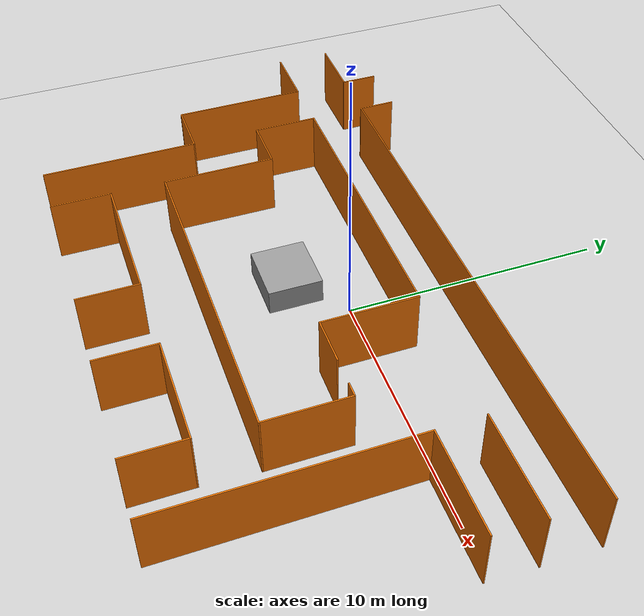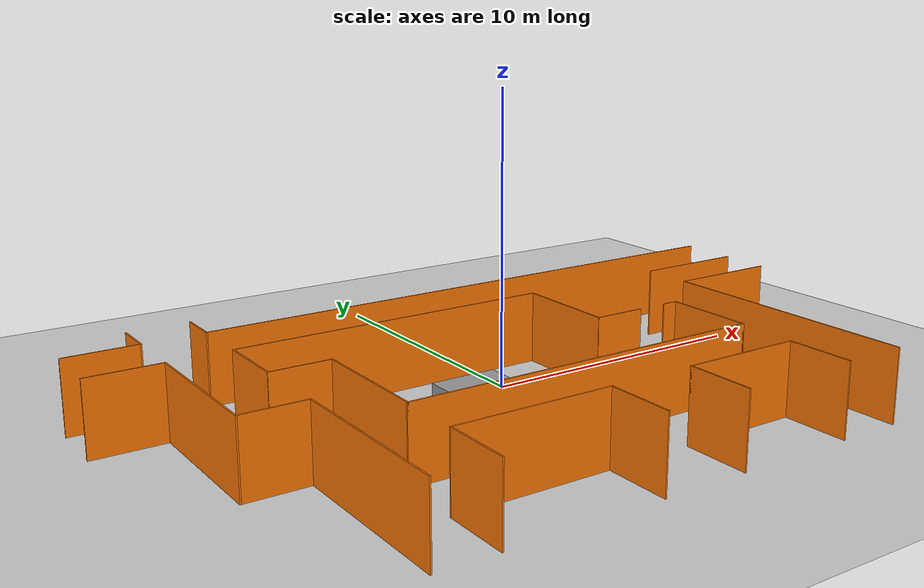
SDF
<sdf version="1.7">
 <world name="default">
  <light name="sun" type="directional">
   <pose>0 0 10 0 -0 0</pose>
   <diffuse>0.8 0.8 0.8 1</diffuse>
   <specular>0.2 0.2 0.2 1</specular>
   <attenuation>
    <range>1000</range>
    <constant>0.9</constant>
    <linear>0.01</linear>
    <quadratic>0.001</quadratic>
   </attenuation>
   <direction>-0.5 0.1 -0.9</direction>
   <spot><inner_angle>0</inner_angle><outer_angle>0</outer_angle><falloff>0</falloff></spot>
  </light>
  <model name="ground_plane">
   <static>1</static>
   <link name="link">
    <collision name="collision">
     <geometry><plane><normal>0 0 1</normal><size>100 100</size></plane></geometry>
     <surface><friction><ode><mu>100</mu><mu2>50</mu2></ode></friction></surface>
    </collision>
    <visual name="visual">
     <cast_shadows>0</cast_shadows>
     <geometry><plane><normal>0 0 1</normal><size>100 100</size></plane></geometry>
     <material>
      <script><uri>file://media/materials/scripts/gazebo.material</uri><name>Gazebo/Grey</name></script>
     </material>
    </visual>
   </link>
  </model>
  <gravity>0 0 -9.8</gravity>
  <magnetic_field>6e-06 2.3e-05 -4.2e-05</magnetic_field>
  <atmosphere type="adiabatic"/>
  <physics type="ode">
   <max_step_size>0.001</max_step_size>
   <real_time_factor>1</real_time_factor>
   <real_time_update_rate>1000</real_time_update_rate>
  </physics>
  <scene><ambient>0.4 0.4 0.4 1</ambient><background>0.7 0.7 0.7 1</background><shadows>1</shadows></scene>
  <audio><device>default</device></audio>
  <spherical_coordinates>
   <surface_model>EARTH_WGS84</surface_model>
   <latitude_deg>0</latitude_deg>
   <longitude_deg>0</longitude_deg>
   <elevation>0</elevation>
   <heading_deg>0</heading_deg>
  </spherical_coordinates>
  <model name="shiyanlou_third">
   <pose>-0.355167 -2.2278 0 0 -0 0</pose>
   <link name="Wall_110">
    <collision name="Wall_110_Collision">
     <geometry><box><size>4.083337071 0.05 2.5</size></box></geometry>
     <pose>0 0 1.25 0 -0 0</pose>
    </collision>
    <visual name="Wall_110_Visual">
     <pose>0 0 1.25 0 -0 0</pose>
     <geometry><box><size>4.083337071 0.05 2.5</size></box></geometry>
     <material>
      <script><uri>file://media/materials/scripts/gazebo.material</uri><name>Gazebo/Grey</name></script>
      <ambient>0.996078 0.47451 0.0196078 1</ambient>
     </material>
     <meta><layer>0</layer></meta>
    </visual>
    <pose>10.35632421 3.8308 0 0 -0 0</pose>
   </link>
   <link name="Wall_116">
    <collision name="Wall_116_Collision">
     <geometry><box><size>9.40216 0.05 2.5</size></box></geometry>
     <pose>0 0 1.25 0 -0 0</pose>
    </collision>
    <visual name="Wall_116_Visual">
     <pose>0 0 1.25 0 -0 0</pose>
     <geometry><box><size>9.40216 0.05 2.5</size></box></geometry>
     <material>
      <script><uri>file://media/materials/scripts/gazebo.material</uri><name>Gazebo/Grey</name></script>
      <ambient>0.996078 0.47451 0.0196078 1</ambient>
     </material>
     <meta><layer>0</layer></meta>
    </visual>
    <pose>8.33966775 -2.654615 0 0 -0 1.5708</pose>
   </link>
   <link name="Wall_118">
    <collision name="Wall_118_Collision">
     <geometry><box><size>4 0.05 2.5</size></box></geometry>
     <pose>0 0 1.25 0 -0 0</pose>
    </collision>
    <visual name="Wall_118_Visual">
     <pose>0 0 1.25 0 -0 0</pose>
     <geometry><box><size>4 0.05 2.5</size></box></geometry>
     <material>
      <script><uri>file://media/materials/scripts/gazebo.material</uri><name>Gazebo/Grey</name></script>
      <ambient>0.996078 0.47451 0.0196078 1</ambient>
     </material>
     <meta><layer>0</layer></meta>
    </visual>
    <pose>10.31466775 2.02146 0 0 -0 0</pose>
   </link>
   <link name="Wall_122">
    <collision name="Wall_122_Collision">
     <geometry><box><size>2.33333 0.05 2.5</size></box></geometry>
     <pose>0 0 1.25 0 -0 0</pose>
    </collision>
    <visual name="Wall_122_Visual">
     <pose>0 0 1.25 0 -0 0</pose>
     <geometry><box><size>2.33333 0.05 2.5</size></box></geometry>
     <material>
      <script><uri>file://media/materials/scripts/gazebo.material</uri><name>Gazebo/Grey</name></script>
      <ambient>0.996078 0.47451 0.0196078 1</ambient>
     </material>
     <meta><layer>0</layer></meta>
    </visual>
    <pose>1.94383 -6.17936 0 0 -0 -1.5708</pose>
   </link>
   <link name="Wall_126">
    <collision name="Wall_126_Collision">
     <geometry><box><size>4.21167025 0.05 2.5</size></box></geometry>
     <pose>0 0 1.25 0 -0 0</pose>
    </collision>
    <visual name="Wall_126_Visual">
     <pose>0 0 1.25 0 -0 0</pose>
     <geometry><box><size>4.21167025 0.05 2.5</size></box></geometry>
     <material>
      <script><uri>file://media/materials/scripts/gazebo.material</uri><name>Gazebo/Grey</name></script>
      <ambient>0.996078 0.47451 0.0196078 1</ambient>
     </material>
     <meta><layer>0</layer></meta>
    </visual>
    <pose>4.024670125 -5.03769 0 0 -0 0</pose>
   </link>
   <link name="Wall_130">
    <collision name="Wall_130_Collision">
     <geometry><box><size>2.33333 0.05 2.5</size></box></geometry>
     <pose>0 0 1.25 0 -0 0</pose>
    </collision>
    <visual name="Wall_130_Visual">
     <pose>0 0 1.25 0 -0 0</pose>
     <geometry><box><size>2.33333 0.05 2.5</size></box></geometry>
     <material>
      <script><uri>file://media/materials/scripts/gazebo.material</uri><name>Gazebo/Grey</name></script>
      <ambient>0.996078 0.47451 0.0196078 1</ambient>
     </material>
     <meta><layer>0</layer></meta>
    </visual>
    <pose>6.10549275 -6.17936 0 0 -0 -1.5708</pose>
   </link>
   <link name="Wall_19">
    <collision name="Wall_19_Collision">
     <geometry><box><size>5.16667 0.05 2.5</size></box></geometry>
     <pose>0 0 1.25 0 -0 0</pose>
    </collision>
    <visual name="Wall_19_Visual">
     <pose>0 0 1.25 0 -0 0</pose>
     <geometry><box><size>5.16667 0.05 2.5</size></box></geometry>
     <material>
      <script><uri>file://media/materials/scripts/gazebo.material</uri><name>Gazebo/Grey</name></script>
      <ambient>0.996078 0.47451 0.0196078 1</ambient>
     </material>
     <meta><layer>0</layer></meta>
    </visual>
    <pose>-10.521005 1.29646 0 0 -0 -1.5708</pose>
   </link>
   <link name="Wall_26">
    <collision name="Wall_26_Collision">
     <geometry><box><size>1.416677071 0.05 2.5</size></box></geometry>
     <pose>0 0 1.25 0 -0 0</pose>
    </collision>
    <visual name="Wall_26_Visual">
     <pose>0 0 1.25 0 -0 0</pose>
     <geometry><box><size>1.416677071 0.05 2.5</size></box></geometry>
     <material>
      <script><uri>file://media/materials/scripts/gazebo.material</uri><name>Gazebo/Grey</name></script>
      <ambient>0.996078 0.47451 0.0196078 1</ambient>
     </material>
     <meta><layer>0</layer></meta>
    </visual>
    <pose>-10.521005 6.647301465 0 0 -0 1.5708</pose>
   </link>
   <link name="Wall_31">
    <collision name="Wall_31_Collision">
     <geometry><box><size>1.416916062 0.05 2.5</size></box></geometry>
     <pose>0 0 1.25 0 -0 0</pose>
    </collision>
    <visual name="Wall_31_Visual">
     <pose>0 0 1.25 0 -0 0</pose>
     <geometry><box><size>1.416916062 0.05 2.5</size></box></geometry>
     <material>
      <script><uri>file://media/materials/scripts/gazebo.material</uri><name>Gazebo/Grey</name></script>
      <ambient>0.996078 0.47451 0.0196078 1</ambient>
     </material>
     <meta><layer>0</layer></meta>
    </visual>
    <pose>-8.41183 6.647251969 0 0 -0 -1.5708</pose>
   </link>
   <link name="Wall_33">
    <collision name="Wall_33_Collision">
     <geometry><box><size>2.5 0.05 2.5</size></box></geometry>
     <pose>0 0 1.25 0 -0 0</pose>
    </collision>
    <visual name="Wall_33_Visual">
     <pose>0 0 1.25 0 -0 0</pose>
     <geometry><box><size>2.5 0.05 2.5</size></box></geometry>
     <material>
      <script><uri>file://media/materials/scripts/gazebo.material</uri><name>Gazebo/Grey</name></script>
      <ambient>0.996078 0.47451 0.0196078 1</ambient>
     </material>
     <meta><layer>0</layer></meta>
    </visual>
    <pose>-11.746005 5.963975 0 0 -0 3.14159</pose>
   </link>
   <link name="Wall_35">
    <collision name="Wall_35_Collision">
     <geometry><box><size>2.5 0.05 2.5</size></box></geometry>
     <pose>0 0 1.25 0 -0 0</pose>
    </collision>
    <visual name="Wall_35_Visual">
     <pose>0 0 1.25 0 -0 0</pose>
     <geometry><box><size>2.5 0.05 2.5</size></box></geometry>
     <material>
      <script><uri>file://media/materials/scripts/gazebo.material</uri><name>Gazebo/Grey</name></script>
      <ambient>0.996078 0.47451 0.0196078 1</ambient>
     </material>
     <meta><layer>0</layer></meta>
    </visual>
    <pose>-11.746005 3.8548 0 0 -0 3.14159</pose>
   </link>
   <link name="Wall_38">
    <collision name="Wall_38_Collision">
     <geometry><box><size>2.098667 0.05 2.5</size></box></geometry>
     <pose>0 0 1.25 0 -0 0</pose>
    </collision>
    <visual name="Wall_38_Visual">
     <pose>0 0 1.25 0 -0 0</pose>
     <geometry><box><size>2.098667 0.05 2.5</size></box></geometry>
     <material>
      <script><uri>file://media/materials/scripts/gazebo.material</uri><name>Gazebo/Grey</name></script>
      <ambient>0.996078 0.47451 0.0196078 1</ambient>
     </material>
     <meta><layer>0</layer></meta>
    </visual>
    <pose>-7.3805 1.38813 0 0 -0 0</pose>
   </link>
   <link name="Wall_42">
    <collision name="Wall_42_Collision">
     <geometry><box><size>2.194842219 0.05 2.5</size></box></geometry>
     <pose>0 0 1.25 0 -0 0</pose>
    </collision>
    <visual name="Wall_42_Visual">
     <pose>0 0 1.25 0 -0 0</pose>
     <geometry><box><size>2.194842219 0.05 2.5</size></box></geometry>
     <material>
      <script><uri>file://media/materials/scripts/gazebo.material</uri><name>Gazebo/Grey</name></script>
      <ambient>0.996078 0.47451 0.0196078 1</ambient>
     </material>
     <meta><layer>0</layer></meta>
    </visual>
    <pose>-9.448575441 -1.26187 0 0 -0 0</pose>
   </link>
   <link name="Wall_44">
    <collision name="Wall_44_Collision">
     <geometry><box><size>4.36667 0.05 2.5</size></box></geometry>
     <pose>0 0 1.25 0 -0 0</pose>
    </collision>
    <visual name="Wall_44_Visual">
     <pose>0 0 1.25 0 -0 0</pose>
     <geometry><box><size>4.36667 0.05 2.5</size></box></geometry>
     <material>
      <script><uri>file://media/materials/scripts/gazebo.material</uri><name>Gazebo/Grey</name></script>
      <ambient>0.996078 0.47451 0.0196078 1</ambient>
     </material>
     <meta><layer>0</layer></meta>
    </visual>
    <pose>-6.35617 -0.770203 0 0 -0 -1.5708</pose>
   </link>
   <link name="Wall_48">
    <collision name="Wall_48_Collision">
     <geometry><box><size>12.63673513 0.05 2.5</size></box></geometry>
     <pose>0 0 1.25 0 -0 0</pose>
    </collision>
    <visual name="Wall_48_Visual">
     <pose>0 0 1.25 0 -0 0</pose>
     <geometry><box><size>12.63673513 0.05 2.5</size></box></geometry>
     <material>
      <script><uri>file://media/materials/scripts/gazebo.material</uri><name>Gazebo/Grey</name></script>
      <ambient>0.996078 0.47451 0.0196078 1</ambient>
     </material>
     <meta><layer>0</layer></meta>
    </visual>
    <pose>-0.06283377294 -2.92854 0 0 -0 0</pose>
   </link>
   <link name="Wall_5">
    <collision name="Wall_5_Collision">
     <geometry><box><size>20.87079775 0.05 2.5</size></box></geometry>
     <pose>0 0 1.25 0 -0 0</pose>
    </collision>
    <visual name="Wall_5_Visual">
     <pose>0 0 1.25 0 -0 0</pose>
     <geometry><box><size>20.87079775 0.05 2.5</size></box></geometry>
     <material>
      <script><uri>file://media/materials/scripts/gazebo.material</uri><name>Gazebo/Grey</name></script>
      <ambient>0.996078 0.47451 0.0196078 1</ambient>
     </material>
     <meta><layer>0</layer></meta>
    </visual>
    <pose>1.998578875 5.963975 0 0 -0 0</pose>
   </link>
   <link name="Wall_52">
    <collision name="Wall_52_Collision">
     <geometry><box><size>5.35 0.05 2.5</size></box></geometry>
     <pose>0 0 1.25 0 -0 0</pose>
    </collision>
    <visual name="Wall_52_Visual">
     <pose>0 0 1.25 0 -0 0</pose>
     <geometry><box><size>5.35 0.05 2.5</size></box></geometry>
     <material>
      <script><uri>file://media/materials/scripts/gazebo.material</uri><name>Gazebo/Grey</name></script>
      <ambient>0.996078 0.47451 0.0196078 1</ambient>
     </material>
     <meta><layer>0</layer></meta>
    </visual>
    <pose>-3.70617 -5.03769 0 0 -0 0</pose>
   </link>
   <link name="Wall_54">
    <collision name="Wall_54_Collision">
     <geometry><box><size>2.33333 0.05 2.5</size></box></geometry>
     <pose>0 0 1.25 0 -0 0</pose>
    </collision>
    <visual name="Wall_54_Visual">
     <pose>0 0 1.25 0 -0 0</pose>
     <geometry><box><size>2.33333 0.05 2.5</size></box></geometry>
     <material>
      <script><uri>file://media/materials/scripts/gazebo.material</uri><name>Gazebo/Grey</name></script>
      <ambient>0.996078 0.47451 0.0196078 1</ambient>
     </material>
     <meta><layer>0</layer></meta>
    </visual>
    <pose>-6.35617 -6.17936 0 0 -0 -1.5708</pose>
   </link>
   <link name="Wall_60">
    <collision name="Wall_60_Collision">
     <geometry><box><size>6.06882 0.05 2.5</size></box></geometry>
     <pose>0 0 1.25 0 -0 0</pose>
    </collision>
    <visual name="Wall_60_Visual">
     <pose>0 0 1.25 0 -0 0</pose>
     <geometry><box><size>6.06882 0.05 2.5</size></box></geometry>
     <material>
      <script><uri>file://media/materials/scripts/gazebo.material</uri><name>Gazebo/Grey</name></script>
      <ambient>0.996078 0.47451 0.0196078 1</ambient>
     </material>
     <meta><layer>0</layer></meta>
    </visual>
    <pose>-8.37617 -4.271275 0 0 -0 -1.5708</pose>
   </link>
   <link name="Wall_62">
    <collision name="Wall_62_Collision">
     <geometry><box><size>2.33333 0.05 2.5</size></box></geometry>
     <pose>0 0 1.25 0 -0 0</pose>
    </collision>
    <visual name="Wall_62_Visual">
     <pose>0 0 1.25 0 -0 0</pose>
     <geometry><box><size>2.33333 0.05 2.5</size></box></geometry>
     <material>
      <script><uri>file://media/materials/scripts/gazebo.material</uri><name>Gazebo/Grey</name></script>
      <ambient>0.996078 0.47451 0.0196078 1</ambient>
     </material>
     <meta><layer>0</layer></meta>
    </visual>
    <pose>-1.05617 -6.17936 0 0 -0 -1.5708</pose>
   </link>
   <link name="Wall_70">
    <collision name="Wall_70_Collision">
     <geometry><box><size>3.2 0.05 2.5</size></box></geometry>
     <pose>0 0 1.25 0 -0 0</pose>
    </collision>
    <visual name="Wall_70_Visual">
     <pose>0 0 1.25 0 -0 0</pose>
     <geometry><box><size>3.2 0.05 2.5</size></box></geometry>
     <material>
      <script><uri>file://media/materials/scripts/gazebo.material</uri><name>Gazebo/Grey</name></script>
      <ambient>0.996078 0.47451 0.0196078 1</ambient>
     </material>
     <meta><layer>0</layer></meta>
    </visual>
    <pose>6.23049275 -1.35354 0 0 -0 1.5708</pose>
   </link>
   <link name="Wall_72">
    <collision name="Wall_72_Collision">
     <geometry><box><size>0.58332775 0.05 2.5</size></box></geometry>
     <pose>0 0 1.25 0 -0 0</pose>
    </collision>
    <visual name="Wall_72_Visual">
     <pose>0 0 1.25 0 -0 0</pose>
     <geometry><box><size>0.58332775 0.05 2.5</size></box></geometry>
     <material>
      <script><uri>file://media/materials/scripts/gazebo.material</uri><name>Gazebo/Grey</name></script>
      <ambient>0.996078 0.47451 0.0196078 1</ambient>
     </material>
     <meta><layer>0</layer></meta>
    </visual>
    <pose>5.963820125 0.221463 0 0 -0 3.14159</pose>
   </link>
   <link name="Wall_81">
    <collision name="Wall_81_Collision">
     <geometry><box><size>1.83333 0.05 2.5</size></box></geometry>
     <pose>0 0 1.25 0 -0 0</pose>
    </collision>
    <visual name="Wall_81_Visual">
     <pose>0 0 1.25 0 -0 0</pose>
     <geometry><box><size>1.83333 0.05 2.5</size></box></geometry>
     <material>
      <script><uri>file://media/materials/scripts/gazebo.material</uri><name>Gazebo/Grey</name></script>
      <ambient>0.996078 0.47451 0.0196078 1</ambient>
     </material>
     <meta><layer>0</layer></meta>
    </visual>
    <pose>3.72217 0.221463 0 0 -0 3.14159</pose>
   </link>
   <link name="Wall_83">
    <collision name="Wall_83_Collision">
     <geometry><box><size>3.66667 0.05 2.5</size></box></geometry>
     <pose>0 0 1.25 0 -0 0</pose>
    </collision>
    <visual name="Wall_83_Visual">
     <pose>0 0 1.25 0 -0 0</pose>
     <geometry><box><size>3.66667 0.05 2.5</size></box></geometry>
     <material>
      <script><uri>file://media/materials/scripts/gazebo.material</uri><name>Gazebo/Grey</name></script>
      <ambient>0.996078 0.47451 0.0196078 1</ambient>
     </material>
     <meta><layer>0</layer></meta>
    </visual>
    <pose>2.8275 2.04646 0 0 -0 -1.5708</pose>
   </link>
   <link name="Wall_87">
    <collision name="Wall_87_Collision">
     <geometry><box><size>2.500068283 0.05 2.5</size></box></geometry>
     <pose>0 0 1.25 0 -0 0</pose>
    </collision>
    <visual name="Wall_87_Visual">
     <pose>0 0 1.25 0 -0 0</pose>
     <geometry><box><size>2.500068283 0.05 2.5</size></box></geometry>
     <material>
      <script><uri>file://media/materials/scripts/gazebo.material</uri><name>Gazebo/Grey</name></script>
      <ambient>0.996078 0.47451 0.0196078 1</ambient>
     </material>
     <meta><layer>0</layer></meta>
    </visual>
    <pose>-8.41183 2.629814142 0 0 -0 -1.5708</pose>
   </link>
   <link name="Wall_91">
    <collision name="Wall_91_Collision">
     <geometry><box><size>11.2808 0.05 2.5</size></box></geometry>
     <pose>0 0 1.25 0 -0 0</pose>
    </collision>
    <visual name="Wall_91_Visual">
     <pose>0 0 1.25 0 -0 0</pose>
     <geometry><box><size>11.2808 0.05 2.5</size></box></geometry>
     <material>
      <script><uri>file://media/materials/scripts/gazebo.material</uri><name>Gazebo/Grey</name></script>
      <ambient>0.996078 0.47451 0.0196078 1</ambient>
     </material>
     <meta><layer>0</layer></meta>
    </visual>
    <pose>-2.79641 3.8548 0 0 -0 0</pose>
   </link>
   <static>1</static>
  </model>
  <model name="unit_box">
   <pose>-2.04714 -1.78273 0.49998 -1.9e-05 -0 -1e-06</pose>
   <link name="link">
    <inertial>
     <mass>1</mass>
     <inertia>
      <ixx>0.166667</ixx>
      <ixy>0</ixy>
      <ixz>0</ixz>
      <iyy>0.166667</iyy>
      <iyz>0</iyz>
      <izz>0.166667</izz>
     </inertia>
    </inertial>
    <collision name="collision"><geometry><box><size>2.32178 2.08926 1</size></box></geometry></collision>
    <visual name="visual">
     <geometry><box><size>2.32178 2.08926 1</size></box></geometry>
     <material>
      <script><name>Gazebo/Grey</name><uri>file://media/materials/scripts/gazebo.material</uri></script>
     </material>
    </visual>
   </link>
  </model>
 </world>
</sdf>
